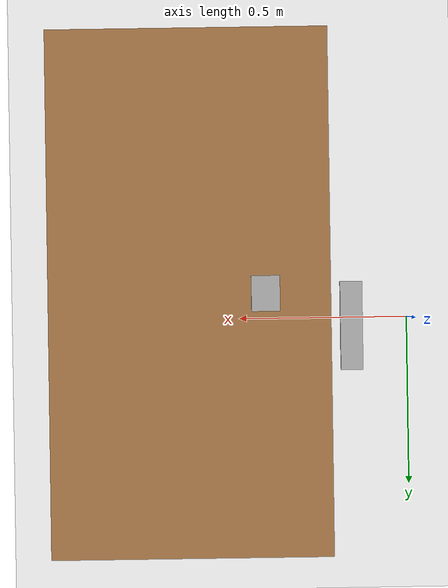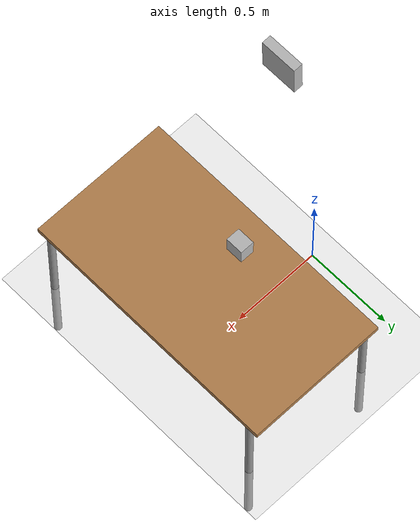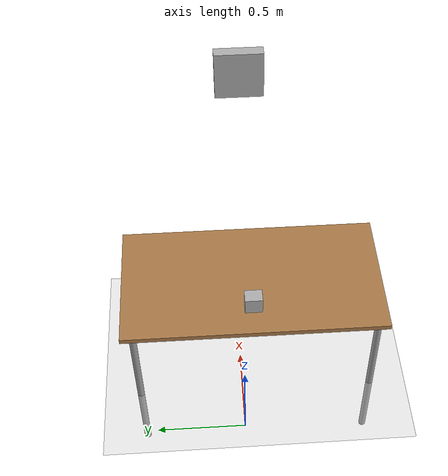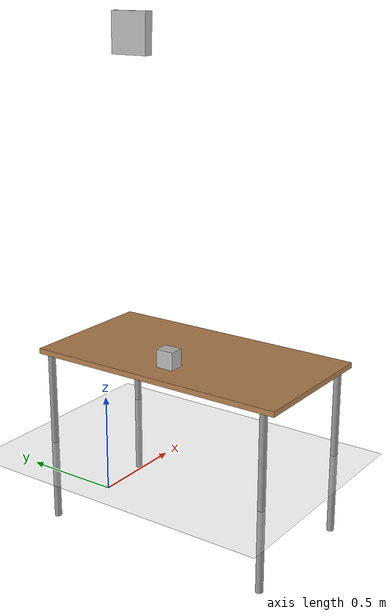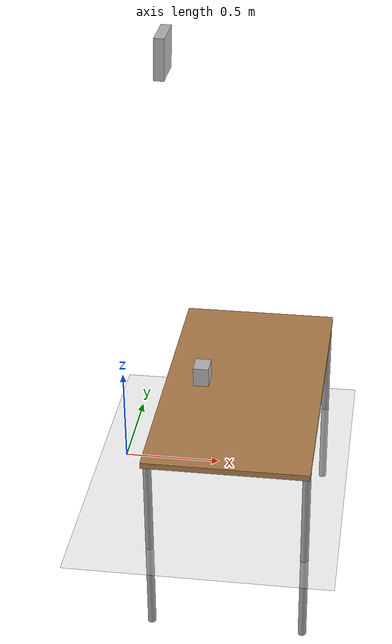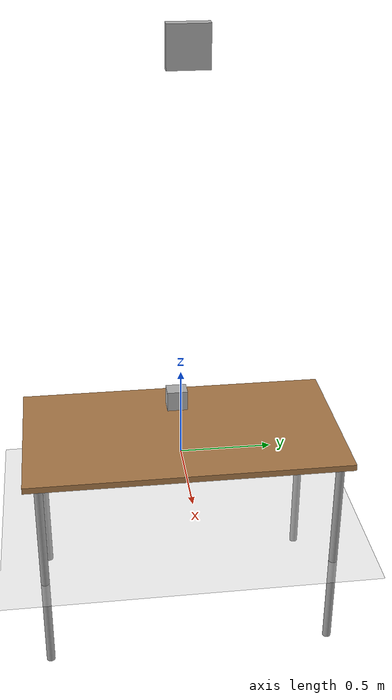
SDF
<sdf version="1.7">
 <world name="default">
  <light name="sun" type="directional">
   <pose>0 0 10 0 -0 0</pose>
   <diffuse>0.8 0.8 0.8 1</diffuse>
   <specular>0.2 0.2 0.2 1</specular>
   <attenuation>
    <range>1000</range>
    <constant>0.9</constant>
    <linear>0.01</linear>
    <quadratic>0.001</quadratic>
   </attenuation>
   <direction>-0.5 0.1 -0.9</direction>
   <spot><inner_angle>0</inner_angle><outer_angle>0</outer_angle><falloff>0</falloff></spot>
  </light>
  <model name="ground_plane">
   <static>1</static>
   <link name="link">
    <collision name="collision">
     <geometry><plane><normal>0 0 1</normal><size>100 100</size></plane></geometry>
     <surface>
      <contact><collide_bitmask>65535</collide_bitmask></contact>
      <friction><ode><mu>100</mu><mu2>50</mu2></ode></friction>
     </surface>
    </collision>
    <visual name="visual">
     <cast_shadows>0</cast_shadows>
     <geometry><plane><normal>0 0 1</normal><size>100 100</size></plane></geometry>
     <material>
      <script><uri>file://media/materials/scripts/gazebo.material</uri><name>Gazebo/Grey</name></script>
     </material>
    </visual>
   </link>
  </model>
  <gravity>0 0 -9.8</gravity>
  <magnetic_field>6e-06 2.3e-05 -4.2e-05</magnetic_field>
  <atmosphere type="adiabatic"/>
  <physics type="ode">
   <max_step_size>0.001</max_step_size>
   <real_time_factor>1</real_time_factor>
   <real_time_update_rate>1000</real_time_update_rate>
  </physics>
  <scene><ambient>0.4 0.4 0.4 1</ambient><background>0.7 0.7 0.7 1</background><shadows>1</shadows></scene>
  <spherical_coordinates>
   <surface_model>EARTH_WGS84</surface_model>
   <latitude_deg>0</latitude_deg>
   <longitude_deg>0</longitude_deg>
   <elevation>0</elevation>
   <heading_deg>0</heading_deg>
  </spherical_coordinates>
  <model name="camera">
   <joint name="world_fixed" type="fixed">
    <pose relative_to="__model__">0 0 0 0 -0 0</pose>
    <parent>world</parent>
    <child>camera_link</child>
   </joint>
   <link name="camera_link">
    <pose relative_to="world_fixed">0 0 0 0 -0 0</pose>
    <inertial>
     <mass>1e-05</mass>
     <inertia><ixx>1e-06</ixx><ixy>0</ixy><ixz>0</ixz><iyy>1e-06</iyy><iyz>0</iyz><izz>1e-06</izz></inertia>
    </inertial>
    <collision name="camera_link_collision"><geometry><box><size>0.2 0.2 0.05</size></box></geometry></collision>
    <visual name="camera_link_visual"><geometry><box><size>0.2 0.2 0.05</size></box></geometry></visual>
    <sensor name="camera" type="camera">
     <update_rate>15</update_rate>
     <camera name="head">
      <horizontal_fov>1.39626</horizontal_fov>
      <image><width>800</width><height>800</height><format>R8G8B8</format></image>
      <clip><near>0.02</near><far>300</far></clip>
      <noise><type>gaussian</type><mean>0</mean><stddev>0.007</stddev></noise>
     </camera>
     <plugin name="camera_controller" filename="libgazebo_ros_camera.so">
      <alwaysOn>1</alwaysOn>
      <updateRate>0.0</updateRate>
      <cameraName>/camera</cameraName>
      <imageTopicName>image_raw</imageTopicName>
      <cameraInfoTopicName>camera_info</cameraInfoTopicName>
      <frameName>camera_link</frameName>
      <hackBaseline>0.07</hackBaseline>
      <distortionK1>0.0</distortionK1>
      <distortionK2>0.0</distortionK2>
      <distortionK3>0.0</distortionK3>
      <distortionT1>0.0</distortionT1>
      <distortionT2>0.0</distortionT2>
      <robotNamespace>/camera/</robotNamespace>
     </plugin>
    </sensor>
   </link>
   <pose>0.25 -0 2.25 3.14159 1.54159 3.14159</pose>
  </model>
  <model name="cube">
   <link name="cube_link">
    <inertial>
     <mass>0.05</mass>
     <inertia><ixx>1</ixx><ixy>0</ixy><ixz>0</ixz><iyy>1</iyy><iyz>0</iyz><izz>1</izz></inertia>
    </inertial>
    <collision name="cube_collision">
     <geometry>
      <mesh>
       <scale>0.25 0.25 0.25</scale>
       <uri>/home/liam/catkin_ws/src/reachy_gazebo_grasp/urdf/meshes/ar_cube.dae</uri>
      </mesh>
     </geometry>
    </collision>
    <visual name="cube_visual">
     <geometry>
      <mesh>
       <scale>0.2 0.25 0.25</scale>
       <uri>/home/liam/catkin_ws/src/reachy_gazebo_grasp/urdf/meshes/ar_cube.dae</uri>
      </mesh>
     </geometry>
    </visual>
   </link>
   <pose>0.427287 -0.074861 0.597001 0.002669 0.000282 3.3e-05</pose>
  </model>
  <model name="table">
   <static>1</static>
   <link name="link">
    <collision name="surface">
     <pose>0 0 1 0 -0 0</pose>
     <geometry><box><size>1.5 0.8 0.03</size></box></geometry>
     <surface><friction><ode><mu>0.6</mu><mu2>0.6</mu2></ode></friction></surface>
    </collision>
    <visual name="visual1">
     <pose>0 0 1 0 -0 0</pose>
     <geometry><box><size>1.5 0.8 0.03</size></box></geometry>
     <material>
      <script><uri>file://media/materials/scripts/gazebo.material</uri><name>Gazebo/Wood</name></script>
     </material>
    </visual>
    <collision name="front_left_leg">
     <pose>0.68 0.38 0.5 0 -0 0</pose>
     <geometry><cylinder><radius>0.02</radius><length>1</length></cylinder></geometry>
    </collision>
    <visual name="front_left_leg">
     <pose>0.68 0.38 0.5 0 -0 0</pose>
     <geometry><cylinder><radius>0.02</radius><length>1</length></cylinder></geometry>
     <material>
      <script><uri>file://media/materials/scripts/gazebo.material</uri><name>Gazebo/Grey</name></script>
     </material>
    </visual>
    <collision name="front_right_leg">
     <pose>0.68 -0.38 0.5 0 -0 0</pose>
     <geometry><cylinder><radius>0.02</radius><length>1</length></cylinder></geometry>
    </collision>
    <visual name="front_right_leg">
     <pose>0.68 -0.38 0.5 0 -0 0</pose>
     <geometry><cylinder><radius>0.02</radius><length>1</length></cylinder></geometry>
     <material>
      <script><uri>file://media/materials/scripts/gazebo.material</uri><name>Gazebo/Grey</name></script>
     </material>
    </visual>
    <collision name="back_right_leg">
     <pose>-0.68 -0.38 0.5 0 -0 0</pose>
     <geometry><cylinder><radius>0.02</radius><length>1</length></cylinder></geometry>
    </collision>
    <visual name="back_right_leg">
     <pose>-0.68 -0.38 0.5 0 -0 0</pose>
     <geometry><cylinder><radius>0.02</radius><length>1</length></cylinder></geometry>
     <material>
      <script><uri>file://media/materials/scripts/gazebo.material</uri><name>Gazebo/Grey</name></script>
     </material>
    </visual>
    <collision name="back_left_leg">
     <pose>-0.68 0.38 0.5 0 -0 0</pose>
     <geometry><cylinder><radius>0.02</radius><length>1</length></cylinder></geometry>
    </collision>
    <visual name="back_left_leg">
     <pose>-0.68 0.38 0.5 0 -0 0</pose>
     <geometry><cylinder><radius>0.02</radius><length>1</length></cylinder></geometry>
     <material>
      <script><uri>file://media/materials/scripts/gazebo.material</uri><name>Gazebo/Grey</name></script>
     </material>
    </visual>
   </link>
   <pose>0.642078 -0.078792 -0.468137 0 0 -1.57169</pose>
  </model>
 </world>
</sdf>
